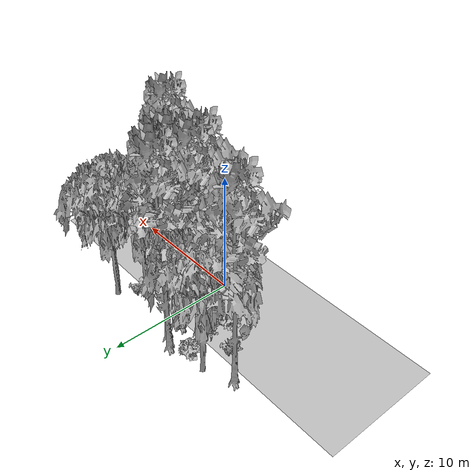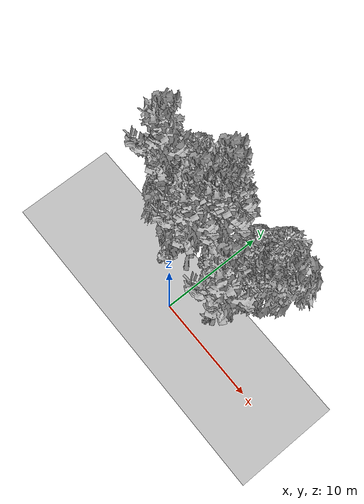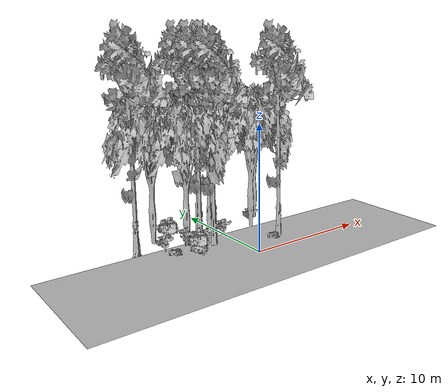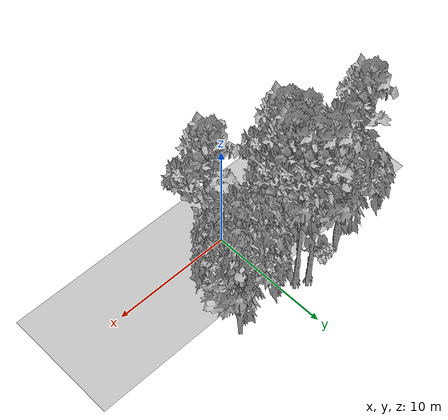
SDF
<sdf version="1.7">
 <world name="default">
  <model name="ground_plane">
   <static>1</static>
   <link name="link">
    <collision name="collision">
     <geometry><plane><normal>0 0 1</normal><size>100 100</size></plane></geometry>
     <surface><contact><ode><min_depth>0.01</min_depth><max_vel>0</max_vel></ode></contact></surface>
    </collision>
    <visual name="grass">
     <cast_shadows>0</cast_shadows>
     <geometry>
      <mesh>
       <scale>0.5814285714285714 0.18142857142857144 0.1</scale>
       <uri>file://grass_plane/meshes/grass_plane.dae</uri>
      </mesh>
     </geometry>
    </visual>
   </link>
  </model>
  <model name="Tree 1">
   <static>1</static>
   <pose>-2.2293901789760255 7.002244898628128 0 1.57079 -0 0</pose>
   <link name="link">
    <collision name="collision">
     <geometry><mesh><scale>3.5 5 3.5</scale><uri>model://tree_9/meshes/tree_9.obj</uri></mesh></geometry>
    </collision>
    <visual name="visual">
     <geometry><mesh><scale>3.5 5 3.5</scale><uri>model://tree_9/meshes/tree_9.obj</uri></mesh></geometry>
    </visual>
   </link>
  </model>
  <model name="Tree 25">
   <static>1</static>
   <pose>-1.3834222626400603 6.521482204011189 0 1.57079 -0 0</pose>
   <link name="link">
    <collision name="collision">
     <geometry><mesh><scale>3.5 5 3.5</scale><uri>model://tree_9/meshes/tree_9.obj</uri></mesh></geometry>
    </collision>
    <visual name="visual">
     <geometry><mesh><scale>3.5 5 3.5</scale><uri>model://tree_9/meshes/tree_9.obj</uri></mesh></geometry>
    </visual>
   </link>
  </model>
  <model name="Tree 139">
   <static>1</static>
   <pose>3.0695916341453895 5.2155263836020005 0 1.57079 -0 0</pose>
   <link name="link">
    <collision name="collision">
     <geometry><mesh><scale>3.5 5 3.5</scale><uri>model://tree_2/meshes/tree_2.obj</uri></mesh></geometry>
    </collision>
    <visual name="visual">
     <geometry><mesh><scale>3.5 5 3.5</scale><uri>model://tree_2/meshes/tree_2.obj</uri></mesh></geometry>
    </visual>
   </link>
  </model>
  <model name="Tree 144">
   <static>1</static>
   <pose>-7.548412395247681 5.562728344748898 0 1.57079 -0 0</pose>
   <link name="link">
    <collision name="collision">
     <geometry><mesh><scale>3.5 5 3.5</scale><uri>model://tree_9/meshes/tree_9.obj</uri></mesh></geometry>
    </collision>
    <visual name="visual">
     <geometry><mesh><scale>3.5 5 3.5</scale><uri>model://tree_9/meshes/tree_9.obj</uri></mesh></geometry>
    </visual>
   </link>
  </model>
  <model name="Tree 207">
   <static>1</static>
   <pose>-5.604297616924995 6.621484517085754 0 1.57079 -0 0</pose>
   <link name="link">
    <collision name="collision">
     <geometry><mesh><scale>3.5 5 3.5</scale><uri>model://tree_2/meshes/tree_2.obj</uri></mesh></geometry>
    </collision>
    <visual name="visual">
     <geometry><mesh><scale>3.5 5 3.5</scale><uri>model://tree_2/meshes/tree_2.obj</uri></mesh></geometry>
    </visual>
   </link>
  </model>
  <model name="Tree 217">
   <static>1</static>
   <pose>-1.1907163183939815 5.117349756266126 0 1.57079 -0 0</pose>
   <link name="link">
    <collision name="collision">
     <geometry><mesh><scale>3.5 5 3.5</scale><uri>model://tree_9/meshes/tree_9.obj</uri></mesh></geometry>
    </collision>
    <visual name="visual">
     <geometry><mesh><scale>3.5 5 3.5</scale><uri>model://tree_9/meshes/tree_9.obj</uri></mesh></geometry>
    </visual>
   </link>
  </model>
  <model name="Tree 339">
   <static>1</static>
   <pose>-2.4312421033340925 4.594277571806984 0 1.57079 -0 0</pose>
   <link name="link">
    <collision name="collision">
     <geometry><mesh><scale>3.5 5 3.5</scale><uri>model://tree_9/meshes/tree_9.obj</uri></mesh></geometry>
    </collision>
    <visual name="visual">
     <geometry><mesh><scale>3.5 5 3.5</scale><uri>model://tree_9/meshes/tree_9.obj</uri></mesh></geometry>
    </visual>
   </link>
  </model>
  <model name="Tree 352">
   <static>1</static>
   <pose>-3.6084650900758106 4.771727782250494 0 1.57079 -0 0</pose>
   <link name="link">
    <collision name="collision">
     <geometry><mesh><scale>3.5 5 3.5</scale><uri>model://tree_2/meshes/tree_2.obj</uri></mesh></geometry>
    </collision>
    <visual name="visual">
     <geometry><mesh><scale>3.5 5 3.5</scale><uri>model://tree_2/meshes/tree_2.obj</uri></mesh></geometry>
    </visual>
   </link>
  </model>
  <model name="Tree 390">
   <static>1</static>
   <pose>-1.8296670308117484 3.4825436250728004 0 1.57079 -0 0</pose>
   <link name="link">
    <collision name="collision">
     <geometry><mesh><scale>3.5 5 3.5</scale><uri>model://tree_9/meshes/tree_9.obj</uri></mesh></geometry>
    </collision>
    <visual name="visual">
     <geometry><mesh><scale>3.5 5 3.5</scale><uri>model://tree_9/meshes/tree_9.obj</uri></mesh></geometry>
    </visual>
   </link>
  </model>
  <model name="Tree 397">
   <static>1</static>
   <pose>-0.6329445517999588 5.29069983448958 0 1.57079 -0 0</pose>
   <link name="link">
    <collision name="collision">
     <geometry><mesh><scale>3.5 5 3.5</scale><uri>model://tree_9/meshes/tree_9.obj</uri></mesh></geometry>
    </collision>
    <visual name="visual">
     <geometry><mesh><scale>3.5 5 3.5</scale><uri>model://tree_9/meshes/tree_9.obj</uri></mesh></geometry>
    </visual>
   </link>
  </model>
  <model name="Tree 411">
   <static>1</static>
   <pose>3.556760530143265 1.9812097333039027 0 1.57079 -0 0</pose>
   <link name="link">
    <collision name="collision">
     <geometry><mesh><scale>3.5 5 3.5</scale><uri>model://tree_9/meshes/tree_9.obj</uri></mesh></geometry>
    </collision>
    <visual name="visual">
     <geometry><mesh><scale>3.5 5 3.5</scale><uri>model://tree_9/meshes/tree_9.obj</uri></mesh></geometry>
    </visual>
   </link>
  </model>
  <model name="Tree 430">
   <static>1</static>
   <pose>4.614373681715492 6.81353551662686 0 1.57079 -0 0</pose>
   <link name="link">
    <collision name="collision">
     <geometry><mesh><scale>3.5 5 3.5</scale><uri>model://tree_2/meshes/tree_2.obj</uri></mesh></geometry>
    </collision>
    <visual name="visual">
     <geometry><mesh><scale>3.5 5 3.5</scale><uri>model://tree_2/meshes/tree_2.obj</uri></mesh></geometry>
    </visual>
   </link>
  </model>
  <model name="Bush 28">
   <static>1</static>
   <pose>-0.07659672244399474 4.749284850891996 0 1.57079 -0 0</pose>
   <link name="link">
    <collision name="collision">
     <geometry><mesh><scale>2 2 2</scale><uri>model://bush_0/meshes/bush_0.obj</uri></mesh></geometry>
     <surface><contact><collide_without_contact>false</collide_without_contact></contact></surface>
    </collision>
    <visual name="visual">
     <geometry><mesh><scale>2 2 2</scale><uri>model://bush_0/meshes/bush_0.obj</uri></mesh></geometry>
    </visual>
   </link>
  </model>
  <model name="Bush 36">
   <static>1</static>
   <pose>3.5322655791680475 5.827265236331424 0 1.57079 -0 0</pose>
   <link name="link">
    <collision name="collision">
     <geometry><mesh><scale>2 2 2</scale><uri>model://bush_0/meshes/bush_0.obj</uri></mesh></geometry>
     <surface><contact><collide_without_contact>false</collide_without_contact></contact></surface>
    </collision>
    <visual name="visual">
     <geometry><mesh><scale>2 2 2</scale><uri>model://bush_0/meshes/bush_0.obj</uri></mesh></geometry>
    </visual>
   </link>
  </model>
  <model name="Bush 64">
   <static>1</static>
   <pose>-4.202050284256835 6.445426499984794 0 1.57079 -0 0</pose>
   <link name="link">
    <collision name="collision">
     <geometry><mesh><scale>2 2 2</scale><uri>model://bush_1/meshes/bush_1.obj</uri></mesh></geometry>
     <surface><contact><collide_without_contact>false</collide_without_contact></contact></surface>
    </collision>
    <visual name="visual">
     <geometry><mesh><scale>2 2 2</scale><uri>model://bush_1/meshes/bush_1.obj</uri></mesh></geometry>
    </visual>
   </link>
  </model>
  <model name="Bush 85">
   <static>1</static>
   <pose>-3.837149591288444 4.557564087840195 0 1.57079 -0 0</pose>
   <link name="link">
    <collision name="collision">
     <geometry><mesh><scale>2 2 2</scale><uri>model://bush_5/meshes/bush_5.obj</uri></mesh></geometry>
     <surface><contact><collide_without_contact>false</collide_without_contact></contact></surface>
    </collision>
    <visual name="visual">
     <geometry><mesh><scale>2 2 2</scale><uri>model://bush_5/meshes/bush_5.obj</uri></mesh></geometry>
    </visual>
   </link>
  </model>
  <model name="Bush 97">
   <static>1</static>
   <pose>-3.7803205223563268 2.463863617728954 0 1.57079 -0 0</pose>
   <link name="link">
    <collision name="collision">
     <geometry><mesh><scale>2 2 2</scale><uri>model://bush_3/meshes/bush_3.obj</uri></mesh></geometry>
     <surface><contact><collide_without_contact>false</collide_without_contact></contact></surface>
    </collision>
    <visual name="visual">
     <geometry><mesh><scale>2 2 2</scale><uri>model://bush_3/meshes/bush_3.obj</uri></mesh></geometry>
    </visual>
   </link>
  </model>
  <model name="Bush 193">
   <static>1</static>
   <pose>2.8900405946780054 1.8131267663802006 0 1.57079 -0 0</pose>
   <link name="link">
    <collision name="collision">
     <geometry><mesh><scale>2 2 2</scale><uri>model://bush_2/meshes/bush_2.obj</uri></mesh></geometry>
     <surface><contact><collide_without_contact>false</collide_without_contact></contact></surface>
    </collision>
    <visual name="visual">
     <geometry><mesh><scale>2 2 2</scale><uri>model://bush_2/meshes/bush_2.obj</uri></mesh></geometry>
    </visual>
   </link>
  </model>
  <model name="Bush 212">
   <static>1</static>
   <pose>-5.317373857023881 3.5567246585102232 0 1.57079 -0 0</pose>
   <link name="link">
    <collision name="collision">
     <geometry><mesh><scale>2 2 2</scale><uri>model://bush_2/meshes/bush_2.obj</uri></mesh></geometry>
     <surface><contact><collide_without_contact>false</collide_without_contact></contact></surface>
    </collision>
    <visual name="visual">
     <geometry><mesh><scale>2 2 2</scale><uri>model://bush_2/meshes/bush_2.obj</uri></mesh></geometry>
    </visual>
   </link>
  </model>
  <model name="Bush 287">
   <static>1</static>
   <pose>-1.1030295169552105 5.0206823469165265 0 1.57079 -0 0</pose>
   <link name="link">
    <collision name="collision">
     <geometry><mesh><scale>2 2 2</scale><uri>model://bush_3/meshes/bush_3.obj</uri></mesh></geometry>
     <surface><contact><collide_without_contact>false</collide_without_contact></contact></surface>
    </collision>
    <visual name="visual">
     <geometry><mesh><scale>2 2 2</scale><uri>model://bush_3/meshes/bush_3.obj</uri></mesh></geometry>
    </visual>
   </link>
  </model>
  <model name="Bush 292">
   <static>1</static>
   <pose>-5.6780474047207505 4.4650100450209145 0 1.57079 -0 0</pose>
   <link name="link">
    <collision name="collision">
     <geometry><mesh><scale>2 2 2</scale><uri>model://bush_0/meshes/bush_0.obj</uri></mesh></geometry>
     <surface><contact><collide_without_contact>false</collide_without_contact></contact></surface>
    </collision>
    <visual name="visual">
     <geometry><mesh><scale>2 2 2</scale><uri>model://bush_0/meshes/bush_0.obj</uri></mesh></geometry>
    </visual>
   </link>
  </model>
  <model name="Bush 311">
   <static>1</static>
   <pose>-3.713829688623669 2.6740785379009537 0 1.57079 -0 0</pose>
   <link name="link">
    <collision name="collision">
     <geometry><mesh><scale>2 2 2</scale><uri>model://bush_1/meshes/bush_1.obj</uri></mesh></geometry>
     <surface><contact><collide_without_contact>false</collide_without_contact></contact></surface>
    </collision>
    <visual name="visual">
     <geometry><mesh><scale>2 2 2</scale><uri>model://bush_1/meshes/bush_1.obj</uri></mesh></geometry>
    </visual>
   </link>
  </model>
 </world>
</sdf>
